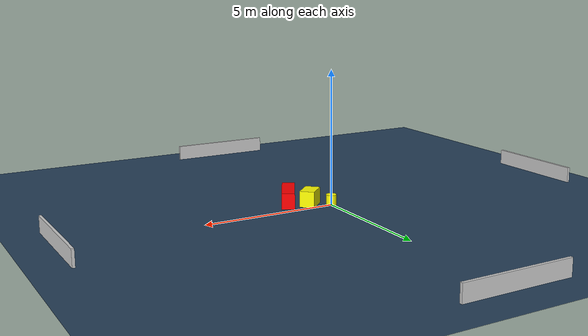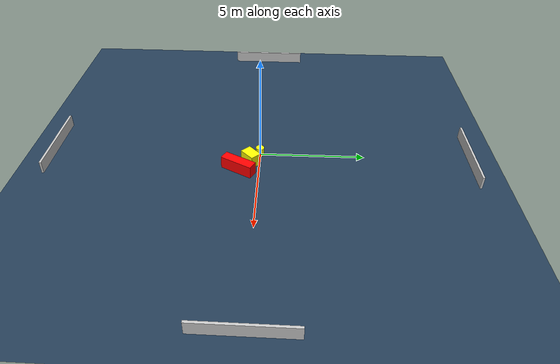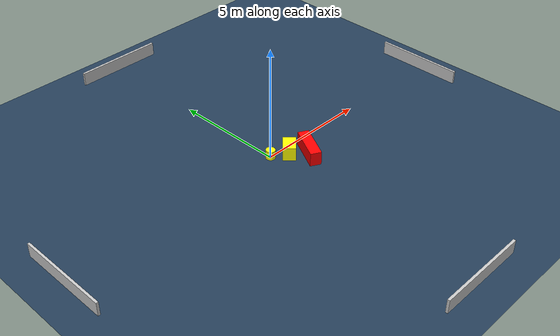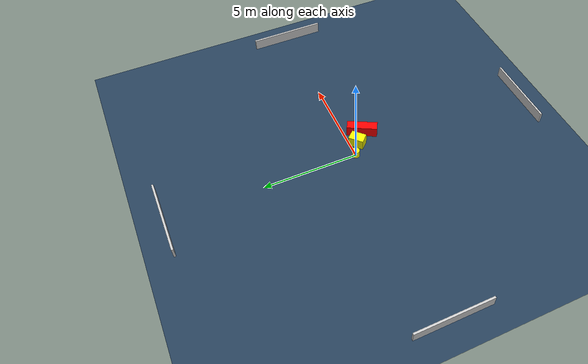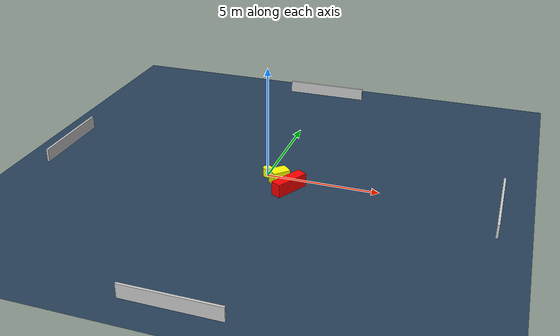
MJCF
<?xml version="1.0" ?>
<mujoco model="generated_environment">
  <option timestep="0.01" integrator="RK4" cone="elliptic"/>
  <default>
    <geom density="1"/>
  </default>
  <asset>
    <texture builtin="gradient" height="3072" name="skybox" rgb1="0.3 0.5 0.7" rgb2="0 0 0" type="skybox" width="512"/>
    <texture builtin="checker" height="300" name="groundplane" rgb1="0.2 0.3 0.4" rgb2="0.1 0.2 0.3" type="2d" width="300"/>
    <material name="groundplane" reflectance="0.2" texrepeat="5 5" texture="groundplane"/>
  </asset>
  <worldbody>
    <light dir="0 0 -1" directional="true" pos="0 0 1.5"/>
    <geom condim="3" friction="0.5 0.005 0.001" material="groundplane" name="floor" pos="0 0 0" size="0 0 0.05" type="plane"/>
    <body name="walls">
      <geom name="wall_1" condim="4" pos="-10.0 0.0 0.3" rgba="0.800000011920929 0.800000011920929 0.800000011920929 1.0" size="0.05 2.0 0.3" type="box"/>
      <geom name="wall_2" condim="4" pos="10.0 0.0 0.3" rgba="0.800000011920929 0.800000011920929 0.800000011920929 1.0" size="0.05 2.0 0.3" type="box"/>
      <geom name="wall_3" condim="4" pos="0.0 -10.0 0.3" rgba="0.800000011920929 0.800000011920929 0.800000011920929 1.0" size="2.0 0.05 0.3" type="box"/>
      <geom name="wall_4" condim="4" pos="0.0 10.0 0.3" rgba="0.800000011920929 0.800000011920929 0.800000011920929 1.0" size="2.0 0.05 0.3" type="box"/>
    </body>
    <body name="robot">
      <joint name="joint_x" type="slide" pos="0 0 0" axis="1 0 0"/>
      <joint name="joint_y" type="slide" pos="0 0 0" axis="0 1 0"/>
      <geom name="robot" type="cylinder" pos="0.0 0.0 0.2" size="0.2 0.2 0.0" mass="5.0" friction="1.0 0.005 0.0001" condim="4" rgba="1.0 1.0 0.0 1.0"/>
    </body>
    <body name="obstacle_1_movable">
      <geom name="obstacle_1_movable" condim="4" pos="0.6748722492493712 -0.4025931524778863 0.3" euler="0 0 134.3445679463319" friction="0.0 0.005 0.001" rgba="1.0 1.0 0.0 1.0" size="0.2734126972977391 0.39440596364620234 0.3" type="box" mass="0.1"/>
      <joint type="free"/>
    </body>
    <body name="obstacle_2_static">
      <geom name="obstacle_2_static" condim="4" pos="1.2848900444100695 -0.9506070825644124 0.3" euler="0 0 331.80686750506163" friction="0.0 0.005 0.001" rgba="1.0 0.0 0.0 1.0" size="0.23921327312258606 0.7966253627771784 0.3" type="box"/>
    </body>
  </worldbody>
  <actuator>
    <motor name="actuator_x" joint="joint_x" gear="1" ctrlrange="-1 1"/>
    <motor name="actuator_y" joint="joint_y" gear="1" ctrlrange="-1 1"/>
  </actuator>
</mujoco>
